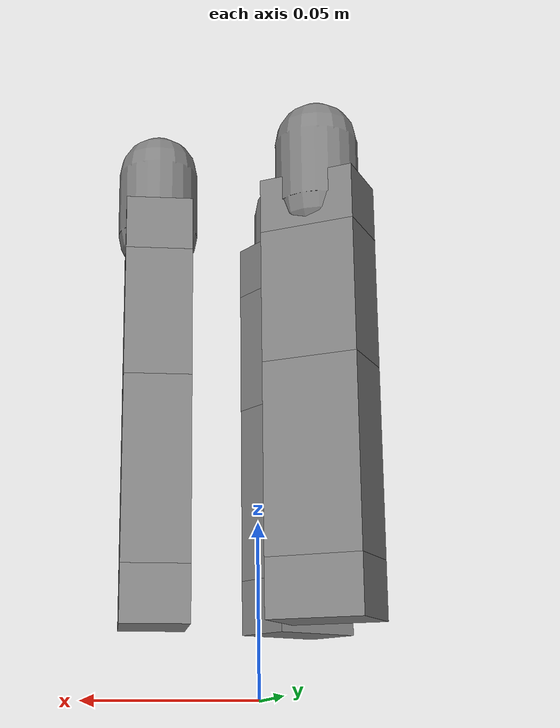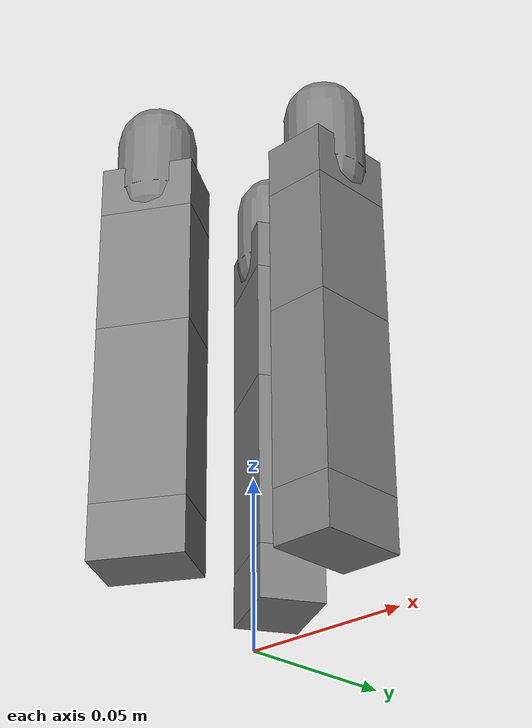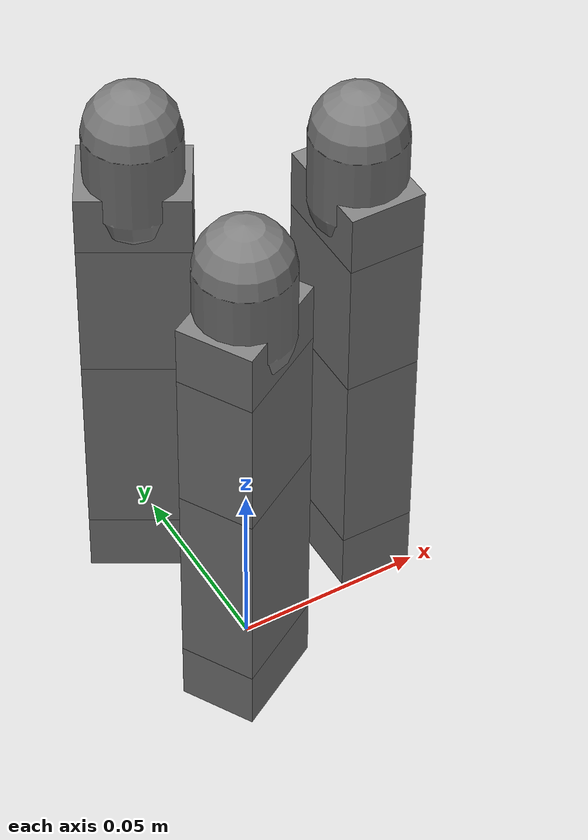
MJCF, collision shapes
<mujoco model="tri_finger_hand">
  <compiler angle="radian" meshdir="assets" autolimits="true"/>
  <option cone="elliptic" impratio="10"/>

  <default>
    <default class="tri_finger_hand">
      <joint axis="0 1 0" damping="0.1"/>
      <position kp="1"/>
      <geom density="800"/>

      <default class="visual">
        <geom type="mesh" contype="0" conaffinity="0" group="2" material="black"/>
        <default class="base_visual"><geom mesh="link_0.0"/></default>
        <default class="proximal_visual"><geom mesh="link_1.0"/></default>
        <default class="medial_visual"><geom mesh="link_2.0"/></default>
        <default class="distal_visual"><geom mesh="link_3.0"/></default>
        <default class="fingertip_visual"><geom pos="0 0 0.0267" material="white" mesh="link_3.0_tip"/></default>
      </default>

      <default class="collision">
        <geom group="3" type="box" size="0.01 0.01 0.01" density="1000"/>
        <default class="base_collision"><geom size="0.0098 0.01375 0.0082" pos="0 0 0.0082"/></default>
        <default class="proximal_collision"><geom size="0.0098 0.01375 0.027" pos="0 0 0.027"/></default>
        <default class="medial_collision"><geom size="0.0098 0.01375 0.0192" pos="0 0 0.0192"/></default>
        <default class="distal_collision"><geom size="0.0098 0.01375 0.008" pos="0 0 0.008"/></default>
        <default class="fingertip_collision"><geom type="capsule" size="0.012 0.01" pos="0 0 0.019"/></default>
      </default>

      <default class="base"><joint axis="0 0 1" range="-0.47 0.47"/><position ctrlrange="-0.47 0.47"/></default>
      <default class="proximal"><joint range="-0.196 1.61"/><position ctrlrange="-0.196 1.61"/></default>
      <default class="medial"><joint range="-0.174 1.709"/><position ctrlrange="-0.174 1.709"/></default>
      <default class="distal"><joint range="-0.227 1.618"/><position ctrlrange="-0.227 1.618"/></default>
    </default>
  </default>

  <asset>
    <material name="black" rgba="0.2 0.2 0.2 1"/>
    <material name="white" rgba="0.9 0.9 0.9 1"/>
    <mesh file="link_0.0.stl"/>
    <mesh file="link_1.0.stl"/>
    <mesh file="link_2.0.stl"/>
    <mesh file="link_3.0.stl"/>
    <mesh file="link_3.0_tip.stl"/>
  </asset>

  <worldbody>
    <body name="palm" pos="0 0 0.02" childclass="tri_finger_hand">
      <!-- Finger 1 (0 deg) -->
      <body name="f1_base" pos="0.03 0 0" quat="1 0 0 0">
        <joint name="f1j0" class="base"/>
        <geom class="base_visual"/>
        <geom class="base_collision"/>
        <body name="f1_proximal" pos="0 0 0.0164">
          <joint name="f1j1" class="proximal"/>
          <geom class="proximal_visual"/>
          <geom class="proximal_collision"/>
          <body name="f1_medial" pos="0 0 0.054">
            <joint name="f1j2" class="medial"/>
            <geom class="medial_visual"/>
            <geom class="medial_collision"/>
            <body name="f1_distal" pos="0 0 0.0384">
              <joint name="f1j3" class="distal"/>
              <geom class="distal_visual"/>
              <geom class="distal_collision"/>
              <body name="f1_tip">
                <geom class="fingertip_visual"/>
                <geom class="fingertip_collision"/>
              </body>
            </body>
          </body>
        </body>
      </body>
      <!-- Finger 2 (120 deg) -->
      <body name="f2_base" pos="-0.015 0.02598 0" quat="0.866 0 0 0.5">
        <joint name="f2j0" class="base"/>
        <geom class="base_visual"/>
        <geom class="base_collision"/>
        <body name="f2_proximal" pos="0 0 0.0164">
          <joint name="f2j1" class="proximal"/>
          <geom class="proximal_visual"/>
          <geom class="proximal_collision"/>
          <body name="f2_medial" pos="0 0 0.054">
            <joint name="f2j2" class="medial"/>
            <geom class="medial_visual"/>
            <geom class="medial_collision"/>
            <body name="f2_distal" pos="0 0 0.0384">
              <joint name="f2j3" class="distal"/>
              <geom class="distal_visual"/>
              <geom class="distal_collision"/>
              <body name="f2_tip">
                <geom class="fingertip_visual"/>
                <geom class="fingertip_collision"/>
              </body>
            </body>
          </body>
        </body>
      </body>
      <!-- Finger 3 (240 deg) -->
      <body name="f3_base" pos="-0.015 -0.02598 0" quat="0.866 0 0 -0.5">
        <joint name="f3j0" class="base"/>
        <geom class="base_visual"/>
        <geom class="base_collision"/>
        <body name="f3_proximal" pos="0 0 0.0164">
          <joint name="f3j1" class="proximal"/>
          <geom class="proximal_visual"/>
          <geom class="proximal_collision"/>
          <body name="f3_medial" pos="0 0 0.054">
            <joint name="f3j2" class="medial"/>
            <geom class="medial_visual"/>
            <geom class="medial_collision"/>
            <body name="f3_distal" pos="0 0 0.0384">
              <joint name="f3j3" class="distal"/>
              <geom class="distal_visual"/>
              <geom class="distal_collision"/>
              <body name="f3_tip">
                <geom class="fingertip_visual"/>
                <geom class="fingertip_collision"/>
              </body>
            </body>
          </body>
        </body>
      </body>
    </body>
  </worldbody>

  <actuator>
    <position name="f1a0" joint="f1j0" class="base"/>
    <position name="f1a1" joint="f1j1" class="proximal"/>
    <position name="f1a2" joint="f1j2" class="medial"/>
    <position name="f1a3" joint="f1j3" class="distal"/>
    <position name="f2a0" joint="f2j0" class="base"/>
    <position name="f2a1" joint="f2j1" class="proximal"/>
    <position name="f2a2" joint="f2j2" class="medial"/>
    <position name="f2a3" joint="f2j3" class="distal"/>
    <position name="f3a0" joint="f3j0" class="base"/>
    <position name="f3a1" joint="f3j1" class="proximal"/>
    <position name="f3a2" joint="f3j2" class="medial"/>
    <position name="f3a3" joint="f3j3" class="distal"/>
  </actuator>
</mujoco>
